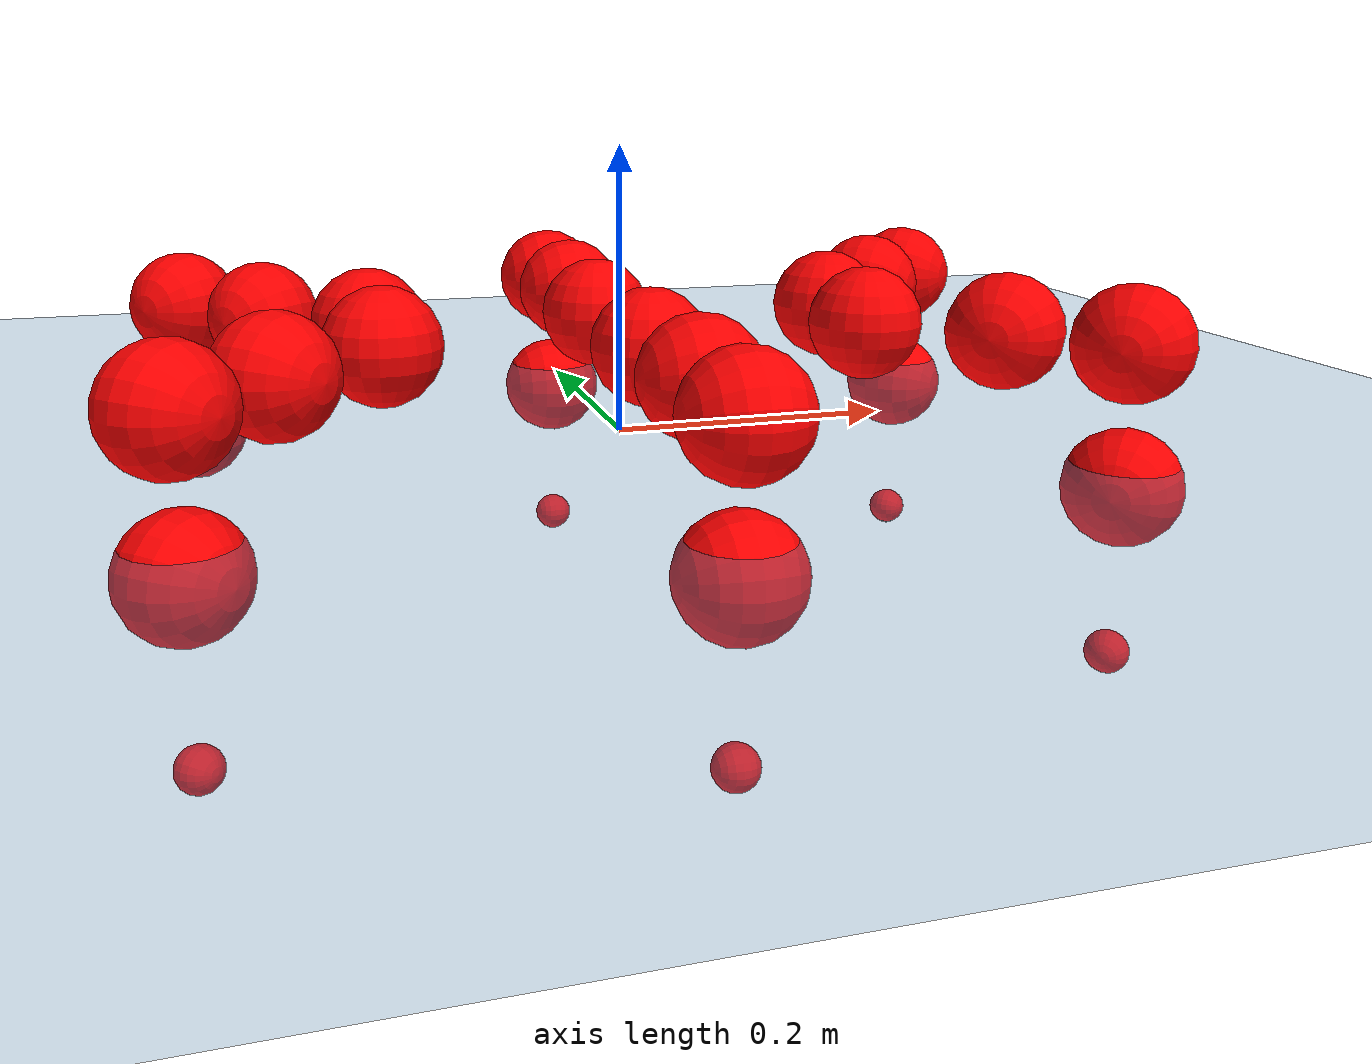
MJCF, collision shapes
<mujoco model="Golem">
  <compiler angle="radian" assetdir="assets" balanceinertia="true" inertiafromgeom="false"/>

  <option timestep="0.005" density="1.2" viscosity="2e-05"/>

  <size nkey="1"/>

  <visual>
    <quality shadowsize="8192"/>
    <map shadowclip="0.5"/>
  </visual>

  <default>
    <default class="/">
      <joint armature="0.01" damping="0.01" frictionloss="0.01"/>
      <geom contype="0" conaffinity="0" group="1" solref="-1000 -80"/>
      <site size="0.01 0.005 0.005" group="5"/>
      <general forcelimited="true" biastype="affine" gainprm="25" biasprm="0 -25 -0.5"/>
      <default class="visual">
        <geom type="mesh" group="2"/>
      </default>
      <default class="collision">
        <geom group="3"/>
      </default>
      <default class="foot">
        <geom size="0.01 0 0" condim="6" group="4" priority="1" solimp="0.015 1 0.01"/>
      </default>
      <default class="reward_collision_sphere">
        <geom group="5" rgba="1 0 0 1"/>
      </default>
    </default>
  </default>

  <asset>
    <texture type="skybox" colorspace="auto" name="//unnamed_texture_0" builtin="gradient" rgb1="0.95 0.95 0.95" rgb2="0.95 0.95 0.95" width="100" height="600"/>
    <texture type="2d" colorspace="auto" name="texplane" builtin="checker" rgb1="0.345 0.575 0.748" rgb2="0.345 0.575 0.748" markrgb="1 1 1" width="512" height="512"/>
    <material name="MatPlane" class="/" texture="texplane" texuniform="true" texrepeat="2 2" specular="0.9"/>
    <mesh name="body" class="/" file="body.stl" scale="0.001 0.001 0.001"/>
    <mesh name="coxa" class="/" file="coxa.stl" scale="0.001 0.001 0.001"/>
    <mesh name="femur" class="/" file="femur.stl" scale="0.001 0.001 0.001"/>
    <mesh name="tibia" class="/" file="tibia.stl" scale="0.001 0.001 0.001"/>
    <mesh name="tarsus" class="/" file="tarsus.stl" scale="0.001 0.001 0.001"/>
  </asset>

  <worldbody>
    <geom name="floor" class="/" size="100 100 0.125" type="plane" group="0" material="MatPlane"/>
    <light name="toplight_shadow" class="/" pos="0 0 5" dir="0.0990148 0.0990148 -0.990148" type="directional" ambient="0.04 0.04 0.04" diffuse="0.55 0.55 0.55" specular="0.12 0.12 0.12"/>
    <light name="toplight_fill" class="/" pos="0 0 5" dir="0.0990148 0.0990148 -0.990148" type="directional" castshadow="false" ambient="0.04 0.04 0.04" diffuse="0.3 0.3 0.3" specular="0.08 0.08 0.08"/>
    <body name="trunk" pos="0.00141474 0.00252726 0.00255689" quat="1 -2.83785e-05 1.90515e-06 3.89843e-05">
      <inertial pos="-0.00123726 -0.000180966 -0.00359787" quat="0.999987 -0.00341579 -0.00207169 -0.00303319" mass="3.88894" diaginertia="0.0156014 0.00260339 0.0185092"/>
      <joint name="//unnamed_joint_0" type="free"/>
      <geom name="//unnamed_geom_1" class="/" pos="0 0 0.0722645" quat="1 0 0 0" type="mesh" rgba="0.9 0.9 0.9 1" mesh="body"/>
      <site name="imu" class="/" pos="0.147373 -0.0135113 0.118261" size="0.00993789"/>
      <camera name="track" class="/" pos="0 -1.51879 0" quat="0.707107 0.707107 0 0" mode="trackcom"/>
      <camera name="ego_camera" class="/" pos="0.142069 0 0.112913" quat="-0.5 -0.5 0.5 0.5"/>
      <body name="coxa_RR" pos="-0.193562 -0.0611049 0.0747238" quat="0.381782 -0.000761058 -0.000263757 -0.924252">
        <inertial pos="-0.000304579 -0.00206921 0.00245928" quat="0.999936 0.00467422 -0.00354319 0.00966976" mass="0.202589" diaginertia="0.0154596 0.00247608 0.018399"/>
        <joint name="coxa_joint_RR" class="/" pos="0 0 0" axis="0.000470048 0.00170526 -0.999998" stiffness="0.00549436" range="-3.08262 3.13256" armature="0.0101169" damping="0.00226833" frictionloss="0.0103908"/>
        <geom name="//unnamed_geom_2" class="/" type="mesh" rgba="0.2 0.2 0.2 1" mesh="coxa"/>
        <geom name="//unnamed_geom_3" class="reward_collision_sphere" size="0.0397515" pos="-0.0327851 0 0"/>
        <body name="femur_RR" pos="0.0666919 0.000105361 -0.000309841" quat="0.500311 -0.500659 0.499044 0.499985">
          <inertial pos="-0.00287852 -0.000841317 -2.71506e-05" quat="1 0.000181494 -0.00037766 0.000185868" mass="0.200548" diaginertia="0.0159453 0.00259466 0.018829"/>
          <joint name="femur_joint_RR" class="/" pos="0 0 0" axis="0.00453709 -0.000607575 -0.99999" stiffness="0.00839763" range="-3.19431 3.1891" armature="0.00847813" damping="0" frictionloss="0.00998823"/>
          <geom name="//unnamed_geom_4" class="/" type="mesh" rgba="0.9 0.9 0.9 1" mesh="femur"/>
          <geom name="//unnamed_geom_5" class="reward_collision_sphere" size="0.0397515"/>
          <body name="tibia_RR" pos="0.00209181 -0.0812758 -0.000838939" quat="-0.000301157 1 -0.000253168 -1.20644e-05">
            <inertial pos="0.00204033 0.000371302 -0.000100568" quat="0.999928 -0.00255505 0.0113773 -0.00272941" mass="0.194834" diaginertia="0.0160157 0.0026895 0.0193324"/>
            <joint name="tibia_joint_RR" class="/" pos="0 0 0" axis="-0.0050305 -0.0135082 0.999896" range="-3.18082 3.10781" armature="0.0102734" damping="0.0218933" frictionloss="0.00951718"/>
            <geom name="//unnamed_geom_6" class="/" type="mesh" rgba="0.2 0.2 0.2 1" mesh="tibia"/>
            <geom name="//unnamed_geom_7" class="reward_collision_sphere" size="0.0397515"/>
            <body name="tarsus_RR" pos="0.0962593 -0.00201935 -0.000254135" quat="1 -0.000156749 0.000387681 -0.000352804">
              <inertial pos="0.0695687 0.00190365 -0.00280998" quat="0.503169 0.506214 0.492584 0.497925" mass="0.204436" diaginertia="0.0155407 0.00269193 0.01883"/>
              <joint name="tarsus_joint_RR" class="/" pos="0 0 0" axis="-0.0012785 -0.00535602 0.999985" range="-3.09543 3.14856" armature="0.0105032" damping="0.0438124" frictionloss="0.0110604"/>
              <geom name="//unnamed_geom_8" class="/" type="mesh" rgba="0.9 0.9 0.9 1" mesh="tarsus"/>
              <geom name="foot_1" class="foot" size="0.0104823" pos="0.122398 0 0" quat="0 -0.707107 0 0.707107"/>
              <geom name="//unnamed_geom_10" class="reward_collision_sphere" size="0.0397515"/>
              <geom name="//unnamed_geom_11" class="reward_collision_sphere" size="0.0149068" pos="0.11748 0 0"/>
              <site name="foot_1" class="foot" pos="0.122398 0 0" quat="0 -0.707107 0 0.707107" size="0.00993789"/>
            </body>
          </body>
        </body>
      </body>
      <body name="coxa_RM" pos="0.00136023 -0.0987498 0.0706548" quat="0.707361 -6.41728e-06 -3.11229e-05 -0.706853">
        <inertial pos="0.000787984 0.00225 0.000975417" quat="0.999999 0.00020603 0.0011557 0.000739172" mass="0.190149" diaginertia="0.0156484 0.00254685 0.0183906"/>
        <joint name="coxa_joint_RM" class="/" pos="0 0 0" axis="0.00547542 -0.000271081 -0.999985" range="-3.13326 3.12885" armature="0.00982885" damping="0.014875" frictionloss="0.00905128"/>
        <geom name="//unnamed_geom_12" class="/" type="mesh" rgba="0.2 0.2 0.2 1" mesh="coxa"/>
        <geom name="//unnamed_geom_13" class="reward_collision_sphere" size="0.0397515" pos="-0.0327851 0 0"/>
        <body name="femur_RM" pos="0.0641578 0.00217659 0.000294456" quat="0.500018 -0.499889 0.499746 0.500347">
          <inertial pos="-0.000780322 -0.00264383 0.00284264" quat="1 1.49392e-06 -5.17572e-05 -1.59658e-05" mass="0.201401" diaginertia="0.0153026 0.00252927 0.0184907"/>
          <joint name="femur_joint_RM" class="/" pos="0 0 0" axis="-0.000523732 -0.000240803 -1" range="-3.13858 3.0939" armature="0.0105011" damping="0" frictionloss="0.01015"/>
          <geom name="//unnamed_geom_14" class="/" type="mesh" rgba="0.9 0.9 0.9 1" mesh="femur"/>
          <geom name="//unnamed_geom_15" class="reward_collision_sphere" size="0.0397515"/>
          <body name="tibia_RM" pos="0.00342211 -0.0785132 -0.000984468" quat="-0.000118831 1 -2.52184e-05 -0.000178041">
            <inertial pos="-0.00209066 -0.00232549 0.00117362" quat="0.999949 0.00181137 0.0099026 0.000953487" mass="0.19715" diaginertia="0.0156466 0.00251929 0.017848"/>
            <joint name="tibia_joint_RM" class="/" pos="0 0 0" axis="0.000677789 -0.00222031 0.999997" range="-3.15391 3.1812" armature="0.0110908" damping="0.0216836" frictionloss="0.0111828"/>
            <geom name="//unnamed_geom_16" class="/" type="mesh" rgba="0.2 0.2 0.2 1" mesh="tibia"/>
            <geom name="//unnamed_geom_17" class="reward_collision_sphere" size="0.0397515"/>
            <body name="tarsus_RM" pos="0.0936873 -0.000610371 0.000917881" quat="1 6.47831e-05 -3.74733e-05 3.53675e-06">
              <inertial pos="0.0664879 -0.00101977 0.000872201" quat="0.504005 0.500594 0.496855 0.498518" mass="0.202949" diaginertia="0.016426 0.00263443 0.0190298"/>
              <joint name="tarsus_joint_RM" class="/" pos="0 0 0" axis="-8.36895e-05 1.68431e-05 1" range="-3.13585 3.14364" armature="0.00856455" damping="0.00753632" frictionloss="0.00941048"/>
              <geom name="//unnamed_geom_18" class="/" type="mesh" rgba="0.9 0.9 0.9 1" mesh="tarsus"/>
              <geom name="foot_2" class="foot" size="0.00896941" pos="0.122398 0 0" quat="0 -0.707107 0 0.707107"/>
              <geom name="//unnamed_geom_20" class="reward_collision_sphere" size="0.0397515"/>
              <geom name="//unnamed_geom_21" class="reward_collision_sphere" size="0.0149068" pos="0.11748 0 0"/>
              <site name="foot_2" class="foot" pos="0.122398 0 0" quat="0 -0.707107 0 0.707107" size="0.00993789"/>
            </body>
          </body>
        </body>
      </body>
      <body name="coxa_RF" pos="0.191529 -0.0618478 0.0733434" quat="0.923852 -0.000125886 0.000457722 -0.382749">
        <inertial pos="0.00281335 -0.000407058 -0.000525469" quat="0.999988 -0.00423543 -0.000625225 0.00251018" mass="0.195942" diaginertia="0.0160776 0.00252231 0.0178157"/>
        <joint name="coxa_joint_RF" class="/" pos="0 0 0" axis="0.00601487 -0.00532364 -0.999968" range="-3.19144 3.16048" armature="0.00880062" damping="0.0135399" frictionloss="0.010459"/>
        <geom name="//unnamed_geom_22" class="/" type="mesh" rgba="0.2 0.2 0.2 1" mesh="coxa"/>
        <geom name="//unnamed_geom_23" class="reward_collision_sphere" size="0.0397515" pos="-0.0327851 0 0"/>
        <body name="femur_RF" pos="0.066127 -0.000803998 0.00353034" quat="0.500817 -0.499979 0.499339 0.499865">
          <inertial pos="0.00132428 0.000424454 -0.00269484" quat="0.999997 -0.0015014 -0.000597497 0.00159238" mass="0.191859" diaginertia="0.015432 0.00261456 0.0184994"/>
          <joint name="femur_joint_RF" class="/" pos="0 0 0" axis="0.00235334 -0.000730103 -0.999997" range="-3.08644 3.12725" armature="0.0113136" damping="0" frictionloss="0.0105507"/>
          <geom name="//unnamed_geom_24" class="/" type="mesh" rgba="0.9 0.9 0.9 1" mesh="femur"/>
          <geom name="//unnamed_geom_25" class="reward_collision_sphere" size="0.0397515"/>
          <body name="tibia_RF" pos="0.00081125 -0.0823699 0.00117006" quat="-1.34283e-05 1 1.06584e-05 -7.02887e-06">
            <inertial pos="0.00101932 0.00286861 -0.000517942" quat="0.999997 -0.000769513 -0.00213569 -0.00103384" mass="0.197653" diaginertia="0.0160277 0.00246186 0.0191204"/>
            <joint name="tibia_joint_RF" class="/" pos="0 0 0" axis="-0.00267362 0.00342849 0.999991" stiffness="0.00058242" range="-3.1619 3.14437" armature="0.0107066" damping="0.00208948" frictionloss="0.00855044"/>
            <geom name="//unnamed_geom_26" class="/" type="mesh" rgba="0.2 0.2 0.2 1" mesh="tibia"/>
            <geom name="//unnamed_geom_27" class="reward_collision_sphere" size="0.0397515"/>
            <body name="tarsus_RF" pos="0.0964977 0.00135246 0.000364515" quat="0.999999 -0.00114691 0.000199711 0.000166501">
              <inertial pos="0.0637933 -0.00227685 4.14753e-05" quat="0.500907 0.492525 0.503724 0.502765" mass="0.191334" diaginertia="0.0162257 0.00249112 0.0184814"/>
              <joint name="tarsus_joint_RF" class="/" pos="0 0 0" axis="0.0121681 -0.00650303 0.999905" stiffness="0.00822026" range="-3.09465 3.16007" armature="0.0105914" damping="0.000851559" frictionloss="0.0100009"/>
              <geom name="//unnamed_geom_28" class="/" type="mesh" rgba="0.9 0.9 0.9 1" mesh="tarsus"/>
              <geom name="foot_3" class="foot" size="0.00953601" pos="0.122398 0 0" quat="0 -0.707107 0 0.707107"/>
              <geom name="//unnamed_geom_30" class="reward_collision_sphere" size="0.0397515"/>
              <geom name="//unnamed_geom_31" class="reward_collision_sphere" size="0.0149068" pos="0.11748 0 0"/>
              <site name="foot_3" class="foot" pos="0.122398 0 0" quat="0 -0.707107 0 0.707107" size="0.00993789"/>
            </body>
          </body>
        </body>
      </body>
      <body name="coxa_LR" pos="-0.194784 0.0658611 0.0741357" quat="0.383126 0.000134558 0.000663495 0.923696">
        <inertial pos="-0.000473728 -0.00225342 0.00146506" quat="0.999902 -0.0123204 -0.00649173 0.0015186" mass="0.191692" diaginertia="0.0150155 0.00253075 0.0178417"/>
        <joint name="coxa_joint_LR" class="/" pos="0 0 0" axis="-0.00289588 -0.0133885 -0.999906" range="-3.17648 3.18335" armature="0.00871867" damping="0.00916588" frictionloss="0.0103663"/>
        <geom name="//unnamed_geom_32" class="/" type="mesh" rgba="0.2 0.2 0.2 1" mesh="coxa"/>
        <geom name="//unnamed_geom_33" class="reward_collision_sphere" size="0.0397515" pos="-0.0327851 0 0"/>
        <body name="femur_LR" pos="0.0673789 -0.0017735 -0.00317172" quat="0.499489 -0.499358 0.499962 0.501189">
          <inertial pos="0.00101854 0.000416847 -0.000383989" quat="0.999936 0.00504852 0.00709107 0.00726483" mass="0.192025" diaginertia="0.0155852 0.00255342 0.0189313"/>
          <joint name="femur_joint_LR" class="/" pos="0 0 0" axis="0.00834391 -0.0086348 0.999928" range="-3.10356 3.08273" armature="0.0110624" damping="0" frictionloss="0.0104625"/>
          <geom name="//unnamed_geom_34" class="/" type="mesh" rgba="0.9 0.9 0.9 1" mesh="femur"/>
          <geom name="//unnamed_geom_35" class="reward_collision_sphere" size="0.0397515"/>
          <body name="tibia_LR" pos="-0.00105514 -0.083716 -0.00343518" quat="0.000222096 0.999999 -0.00101086 0.000586845">
            <inertial pos="0.00132021 -0.00178374 0.00280997" quat="0.999919 -0.0103137 -0.00739269 0.000394594" mass="0.19595" diaginertia="0.0161092 0.00258381 0.0183279"/>
            <joint name="tibia_joint_LR" class="/" pos="0 0 0" axis="0.00137671 0.0017801 -0.999997" range="-3.1964 3.18667" armature="0.00879759" damping="0.00482477" frictionloss="0.0112443"/>
            <geom name="//unnamed_geom_36" class="/" type="mesh" rgba="0.2 0.2 0.2 1" mesh="tibia"/>
            <geom name="//unnamed_geom_37" class="reward_collision_sphere" size="0.0397515"/>
            <body name="tarsus_LR" pos="0.097859 0.000575693 0.00169093" quat="0.999999 -5.16198e-05 0.00133063 2.18129e-05">
              <inertial pos="0.0686965 0.000942558 0.000538423" quat="0.493219 0.493219 0.506332 0.507048" mass="0.20356" diaginertia="0.0159346 0.00260575 0.0188659"/>
              <joint name="tarsus_joint_LR" class="/" pos="0 0 0" axis="-0.00145804 -0.00765615 -0.99997" range="-3.19253 3.14552" armature="0.00989445" damping="0.0283028" frictionloss="0.00866908"/>
              <geom name="//unnamed_geom_38" class="/" type="mesh" rgba="0.9 0.9 0.9 1" mesh="tarsus"/>
              <geom name="foot_4" class="foot" size="0.0101745" pos="0.122398 0 0" quat="0.707107 0 -0.707107 0"/>
              <geom name="//unnamed_geom_40" class="reward_collision_sphere" size="0.0397515"/>
              <geom name="//unnamed_geom_41" class="reward_collision_sphere" size="0.0149068" pos="0.11748 0 0"/>
              <site name="foot_4" class="foot" pos="0.122398 0 0" quat="0.707107 0 -0.707107 0" size="0.00993789"/>
            </body>
          </body>
        </body>
      </body>
      <body name="coxa_LM" pos="-0.000690122 0.100937 0.0706096" quat="0.707218 -0.000586338 0.000844126 0.706994">
        <inertial pos="-0.00232385 -0.00062215 -0.00269048" quat="0.999999 -0.0012355 -5.54142e-05 0.000411971" mass="0.1911" diaginertia="0.014855 0.00242354 0.018667"/>
        <joint name="coxa_joint_LM" class="/" pos="0 0 0" axis="-0.00342254 -0.00245513 -0.999991" range="-3.13428 3.13882" armature="0.0111036" damping="0.00435745" frictionloss="0.00860177"/>
        <geom name="//unnamed_geom_42" class="/" type="mesh" rgba="0.2 0.2 0.2 1" mesh="coxa"/>
        <geom name="//unnamed_geom_43" class="reward_collision_sphere" size="0.0397515" pos="-0.0327851 0 0"/>
        <body name="femur_LM" pos="0.0614998 -0.00221251 0.00277939" quat="0.499986 -0.500566 0.49983 0.499617">
          <inertial pos="0.00297987 0.00191658 0.00243516" quat="0.999999 0.0013356 0.000352735 0.000547358" mass="0.196305" diaginertia="0.0159434 0.00251976 0.0179967"/>
          <joint name="femur_joint_LM" class="/" pos="0 0 0" axis="0.000139797 -0.00271391 0.999996" stiffness="0.000155074" range="-3.1612 3.08259" armature="0.0109642" damping="0" frictionloss="0.011303"/>
          <geom name="//unnamed_geom_44" class="/" type="mesh" rgba="0.9 0.9 0.9 1" mesh="femur"/>
          <geom name="//unnamed_geom_45" class="reward_collision_sphere" size="0.0397515"/>
          <body name="tibia_LM" pos="0.00138225 -0.0786429 0.000352178" quat="-0.000526861 1 -0.000129959 0.000109803">
            <inertial pos="-0.00222376 -0.00219908 0.00187874" quat="0.999961 0.00622683 0.00230618 0.00574103" mass="0.193602" diaginertia="0.0155133 0.00250846 0.0176577"/>
            <joint name="tibia_joint_LM" class="/" pos="0 0 0" axis="0.0107332 0.00793568 -0.999911" range="-3.14034 3.08791" armature="0.0104342" damping="0" frictionloss="0.00977028"/>
            <geom name="//unnamed_geom_46" class="/" type="mesh" rgba="0.2 0.2 0.2 1" mesh="tibia"/>
            <geom name="//unnamed_geom_47" class="reward_collision_sphere" size="0.0397515"/>
            <body name="tarsus_LM" pos="0.0955434 -0.00249825 0.00213832" quat="1 -0.000124682 0.000401882 -0.000216602">
              <inertial pos="0.062843 0.000444436 -0.00276381" quat="0.500457 0.50106 0.491599 0.506766" mass="0.199096" diaginertia="0.0154733 0.00238997 0.0173601"/>
              <joint name="tarsus_joint_LM" class="/" pos="0 0 0" axis="-0.0112798 -0.00348386 -0.99993" stiffness="0.000256674" range="-3.12586 3.08643" armature="0.0091538" damping="0.0163506" frictionloss="0.00985772"/>
              <geom name="//unnamed_geom_48" class="/" type="mesh" rgba="0.9 0.9 0.9 1" mesh="tarsus"/>
              <geom name="foot_5" class="foot" size="0.0102327" pos="0.122398 0 0" quat="0.707107 0 -0.707107 0"/>
              <geom name="//unnamed_geom_50" class="reward_collision_sphere" size="0.0397515"/>
              <geom name="//unnamed_geom_51" class="reward_collision_sphere" size="0.0149068" pos="0.11748 0 0"/>
              <site name="foot_5" class="foot" pos="0.122398 0 0" quat="0.707107 0 -0.707107 0" size="0.00993789"/>
            </body>
          </body>
        </body>
      </body>
      <body name="coxa_LF" pos="0.196405 0.0632424 0.0738686" quat="0.92378 -0.001059 0.000388228 0.382922">
        <inertial pos="0.000734348 0.000121147 0.00148999" quat="0.999961 -0.00418113 0.00770014 -0.00142315" mass="0.199564" diaginertia="0.0150419 0.00257335 0.0177141"/>
        <joint name="coxa_joint_LF" class="/" pos="0 0 0" axis="0.0124099 0.00383833 -0.999916" stiffness="7.395e-05" range="-3.13631 3.1398" armature="0.00940769" damping="0.00624136" frictionloss="0.00960116"/>
        <geom name="//unnamed_geom_52" class="/" type="mesh" rgba="0.2 0.2 0.2 1" mesh="coxa"/>
        <geom name="//unnamed_geom_53" class="reward_collision_sphere" size="0.0397515" pos="-0.0327851 0 0"/>
        <body name="femur_LF" pos="0.0664098 0.00276771 0.00132498" quat="0.499612 -0.500172 0.500192 0.500024">
          <inertial pos="0.00265089 -0.00128716 0.00222296" quat="0.999986 -0.00186872 0.0031527 -0.00373686" mass="0.190825" diaginertia="0.015127 0.00252513 0.0179268"/>
          <joint name="femur_joint_LF" class="/" pos="0 0 0" axis="0.00986648 -0.00418661 0.999943" range="-3.1465 3.17281" armature="0.0114545" damping="0.00534369" frictionloss="0.00964276"/>
          <geom name="//unnamed_geom_54" class="/" type="mesh" rgba="0.9 0.9 0.9 1" mesh="femur"/>
          <geom name="//unnamed_geom_55" class="reward_collision_sphere" size="0.0397515"/>
          <body name="tibia_LF" pos="0.00243639 -0.0851762 -0.000985522" quat="0.000508484 0.999999 -0.000837028 0.00102573">
            <inertial pos="0.000544595 0.000453405 -0.000179136" quat="0.999999 -5.46255e-05 -0.00108082 0.000706649" mass="0.196173" diaginertia="0.0157183 0.00252346 0.0183377"/>
            <joint name="tibia_joint_LF" class="/" pos="0 0 0" axis="0.0123653 -0.00117874 -0.999923" range="-3.16712 3.19443" armature="0.00872408" damping="0.0102248" frictionloss="0.0102698"/>
            <geom name="//unnamed_geom_56" class="/" type="mesh" rgba="0.2 0.2 0.2 1" mesh="tibia"/>
            <geom name="//unnamed_geom_57" class="reward_collision_sphere" size="0.0397515"/>
            <body name="tarsus_LF" pos="0.0972055 0.00168366 -0.00270249" quat="1 0.000806857 4.63736e-05 -1.98445e-05">
              <inertial pos="0.0632251 0.00185899 -0.000722394" quat="0.500478 0.49991 0.500002 0.499609" mass="0.19089" diaginertia="0.0152775 0.00246595 0.0185658"/>
              <joint name="tarsus_joint_LF" class="/" pos="0 0 0" axis="0.0126342 -0.00327372 -0.999915" stiffness="0.0272945" range="-3.18752 3.18451" armature="0.0100092" damping="0" frictionloss="0.0103193"/>
              <geom name="//unnamed_geom_58" class="/" type="mesh" rgba="0.9 0.9 0.9 1" mesh="tarsus"/>
              <geom name="foot_6" class="foot" size="0.0105852" pos="0.122398 0 0" quat="0.707107 0 -0.707107 0"/>
              <geom name="//unnamed_geom_60" class="reward_collision_sphere" size="0.0397515"/>
              <geom name="//unnamed_geom_61" class="reward_collision_sphere" size="0.0149068" pos="0.11748 0 0"/>
              <site name="foot_6" class="foot" pos="0.122398 0 0" quat="0.707107 0 -0.707107 0" size="0.00993789"/>
            </body>
          </body>
        </body>
      </body>
    </body>
  </worldbody>

  <contact>
    <pair class="/" geom1="floor" geom2="foot_1" name="//unnamed_contact_0"/>
    <pair class="/" geom1="floor" geom2="foot_2" name="//unnamed_contact_1"/>
    <pair class="/" geom1="floor" geom2="foot_3" name="//unnamed_contact_2"/>
    <pair class="/" geom1="floor" geom2="foot_4" name="//unnamed_contact_3"/>
    <pair class="/" geom1="floor" geom2="foot_5" name="//unnamed_contact_4"/>
    <pair class="/" geom1="floor" geom2="foot_6" name="//unnamed_contact_5"/>
  </contact>

  <actuator>
    <general name="coxa_joint_RR" class="/" joint="coxa_joint_RR" forcerange="-7.70323 7.70323" gainprm="24.1509" biasprm="0 -24.1509 -0.549583"/>
    <general name="femur_joint_RR" class="/" joint="femur_joint_RR" forcerange="-6.6601 6.6601" gainprm="24.1509" biasprm="0 -24.1509 -0.549583"/>
    <general name="tibia_joint_RR" class="/" joint="tibia_joint_RR" forcerange="-6.67578 6.67578" gainprm="24.1509" biasprm="0 -24.1509 -0.549583"/>
    <general name="tarsus_joint_RR" class="/" joint="tarsus_joint_RR" forcerange="-6.52692 6.52692" gainprm="24.1509" biasprm="0 -24.1509 -0.549583"/>
    <general name="coxa_joint_RM" class="/" joint="coxa_joint_RM" forcerange="-7.26659 7.26659" gainprm="24.1509" biasprm="0 -24.1509 -0.549583"/>
    <general name="femur_joint_RM" class="/" joint="femur_joint_RM" forcerange="-7.09217 7.09217" gainprm="24.1509" biasprm="0 -24.1509 -0.549583"/>
    <general name="tibia_joint_RM" class="/" joint="tibia_joint_RM" forcerange="-6.77503 6.77503" gainprm="24.1509" biasprm="0 -24.1509 -0.549583"/>
    <general name="tarsus_joint_RM" class="/" joint="tarsus_joint_RM" forcerange="-7.11129 7.11129" gainprm="24.1509" biasprm="0 -24.1509 -0.549583"/>
    <general name="coxa_joint_RF" class="/" joint="coxa_joint_RF" forcerange="-7.44764 7.44764" gainprm="24.1509" biasprm="0 -24.1509 -0.549583"/>
    <general name="femur_joint_RF" class="/" joint="femur_joint_RF" forcerange="-7.73279 7.73279" gainprm="24.1509" biasprm="0 -24.1509 -0.549583"/>
    <general name="tibia_joint_RF" class="/" joint="tibia_joint_RF" forcerange="-7.84924 7.84924" gainprm="24.1509" biasprm="0 -24.1509 -0.549583"/>
    <general name="tarsus_joint_RF" class="/" joint="tarsus_joint_RF" forcerange="-7.74349 7.74349" gainprm="24.1509" biasprm="0 -24.1509 -0.549583"/>
    <general name="coxa_joint_LR" class="/" joint="coxa_joint_LR" forcerange="-6.50967 6.50967" gainprm="24.1509" biasprm="0 -24.1509 -0.549583"/>
    <general name="femur_joint_LR" class="/" joint="femur_joint_LR" forcerange="-7.60782 7.60782" gainprm="24.1509" biasprm="0 -24.1509 -0.549583"/>
    <general name="tibia_joint_LR" class="/" joint="tibia_joint_LR" forcerange="-7.9459 7.9459" gainprm="24.1509" biasprm="0 -24.1509 -0.549583"/>
    <general name="tarsus_joint_LR" class="/" joint="tarsus_joint_LR" forcerange="-7.11135 7.11135" gainprm="24.1509" biasprm="0 -24.1509 -0.549583"/>
    <general name="coxa_joint_LM" class="/" joint="coxa_joint_LM" forcerange="-7.81064 7.81064" gainprm="24.1509" biasprm="0 -24.1509 -0.549583"/>
    <general name="femur_joint_LM" class="/" joint="femur_joint_LM" forcerange="-7.34283 7.34283" gainprm="24.1509" biasprm="0 -24.1509 -0.549583"/>
    <general name="tibia_joint_LM" class="/" joint="tibia_joint_LM" forcerange="-6.61499 6.61499" gainprm="24.1509" biasprm="0 -24.1509 -0.549583"/>
    <general name="tarsus_joint_LM" class="/" joint="tarsus_joint_LM" forcerange="-6.49516 6.49516" gainprm="24.1509" biasprm="0 -24.1509 -0.549583"/>
    <general name="coxa_joint_LF" class="/" joint="coxa_joint_LF" forcerange="-7.54192 7.54192" gainprm="24.1509" biasprm="0 -24.1509 -0.549583"/>
    <general name="femur_joint_LF" class="/" joint="femur_joint_LF" forcerange="-6.52368 6.52368" gainprm="24.1509" biasprm="0 -24.1509 -0.549583"/>
    <general name="tibia_joint_LF" class="/" joint="tibia_joint_LF" forcerange="-7.31088 7.31088" gainprm="24.1509" biasprm="0 -24.1509 -0.549583"/>
    <general name="tarsus_joint_LF" class="/" joint="tarsus_joint_LF" forcerange="-7.28331 7.28331" gainprm="24.1509" biasprm="0 -24.1509 -0.549583"/>
  </actuator>

  <sensor>
    <gyro site="imu" name="imu_angular_velocity"/>
    <velocimeter site="imu" name="imu_linear_velocity"/>
    <framelinvel objtype="site" objname="foot_1" name="foot_1_global_linear_velocity"/>
    <framelinvel objtype="site" objname="foot_2" name="foot_2_global_linear_velocity"/>
    <framelinvel objtype="site" objname="foot_3" name="foot_3_global_linear_velocity"/>
    <framelinvel objtype="site" objname="foot_4" name="foot_4_global_linear_velocity"/>
    <framelinvel objtype="site" objname="foot_5" name="foot_5_global_linear_velocity"/>
    <framelinvel objtype="site" objname="foot_6" name="foot_6_global_linear_velocity"/>
  </sensor>

  <keyframe>
    <key name="home" qpos="0 0 0.1457 1 0 0 0 0 0 0 0 0 0 0 0 0 0 0 0 0 0 0 0 0 0 0 0 0 0 0 0"/>
  </keyframe>
</mujoco>
